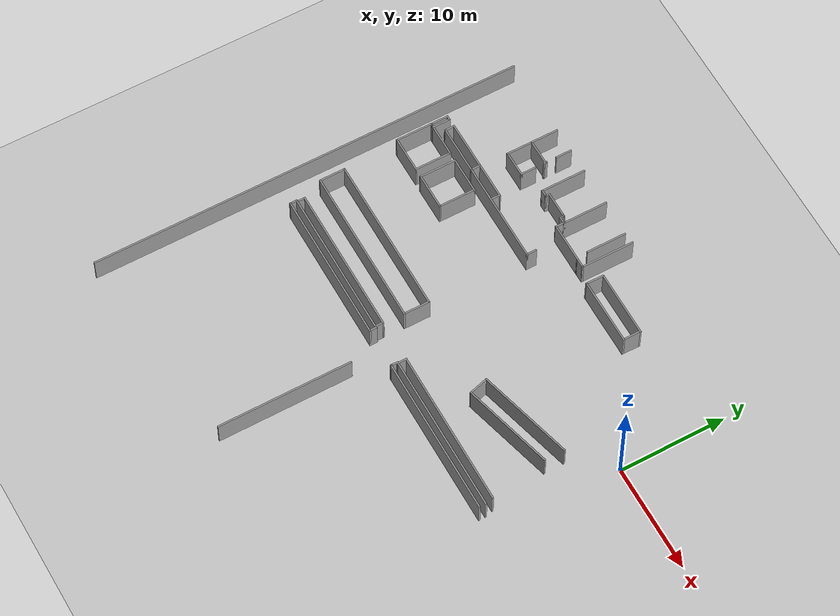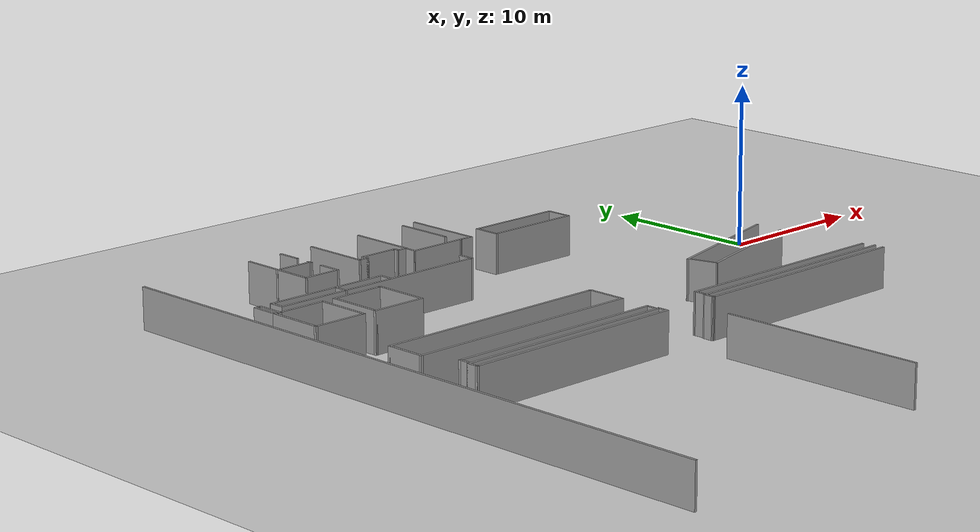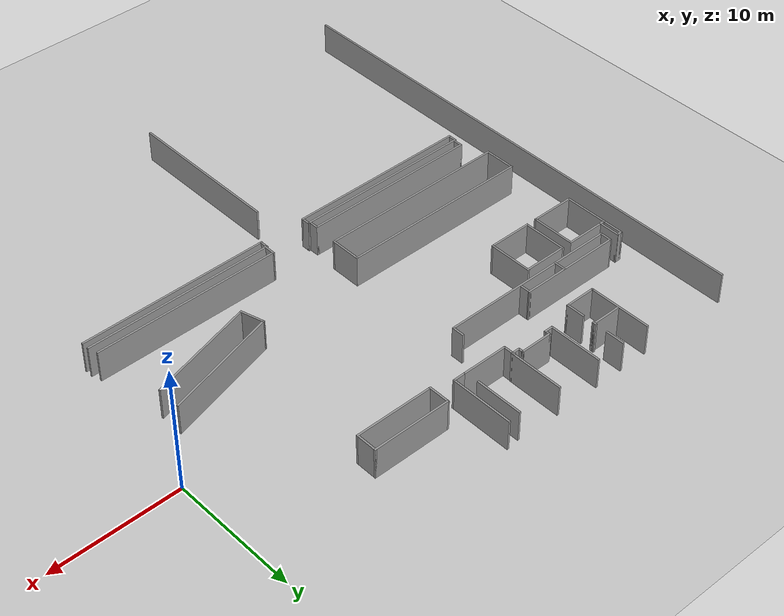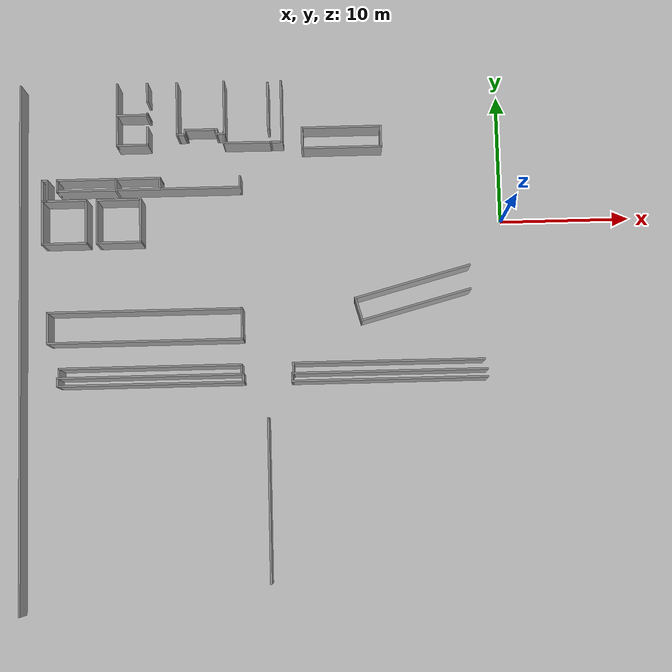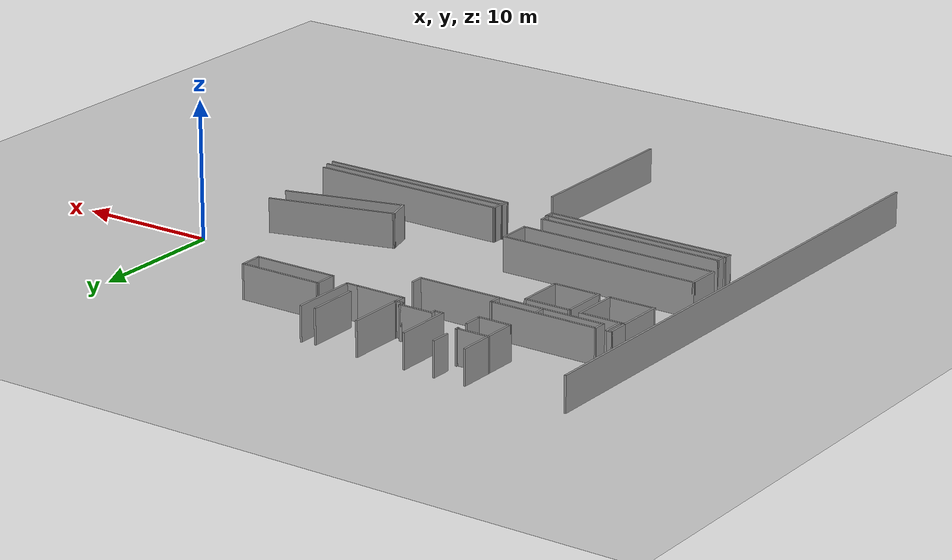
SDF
<sdf version="1.7">
 <world name="default">
  <model name="ground_plane">
   <static>1</static>
   <link name="link">
    <collision name="collision">
     <geometry><plane><normal>0 0 1</normal><size>100 100</size></plane></geometry>
     <surface>
      <contact><collide_bitmask>65535</collide_bitmask></contact>
      <friction><ode><mu>100</mu><mu2>50</mu2></ode></friction>
     </surface>
    </collision>
    <visual name="visual">
     <cast_shadows>0</cast_shadows>
     <geometry><plane><normal>0 0 1</normal><size>100 100</size></plane></geometry>
     <material>
      <script><uri>file://media/materials/scripts/gazebo.material</uri><name>Gazebo/Grey</name></script>
     </material>
    </visual>
   </link>
  </model>
  <model name="gix_2f">
   <pose>0.287504 -9.19255 0 0 -0 0</pose>
   <link name="Wall_11">
    <collision name="Wall_11_Collision">
     <geometry><box><size>15 0.15 2.5</size></box></geometry>
     <pose>0 0 1.25 0 -0 0</pose>
    </collision>
    <visual name="Wall_11_Visual">
     <pose>0 0 1.25 0 -0 0</pose>
     <geometry><box><size>15 0.15 2.5</size></box></geometry>
     <material>
      <script><uri>file://media/materials/scripts/gazebo.material</uri><name>Gazebo/Grey</name></script>
      <ambient>1 1 1 1</ambient>
     </material>
     <meta><layer>0</layer></meta>
    </visual>
    <pose>-9.43001 -2.59263 0 0 -0 0</pose>
   </link>
   <link name="Wall_13">
    <collision name="Wall_13_Collision">
     <geometry><box><size>15 0.15 2.5</size></box></geometry>
     <pose>0 0 1.25 0 -0 0</pose>
    </collision>
    <visual name="Wall_13_Visual">
     <pose>0 0 1.25 0 -0 0</pose>
     <geometry><box><size>15 0.15 2.5</size></box></geometry>
     <material>
      <script><uri>file://media/materials/scripts/gazebo.material</uri><name>Gazebo/Grey</name></script>
      <ambient>1 1 1 1</ambient>
     </material>
     <meta><layer>0</layer></meta>
    </visual>
    <pose>-9.43612 -3.18973 0 0 -0 3.14159</pose>
   </link>
   <link name="Wall_14">
    <collision name="Wall_14_Collision">
     <geometry><box><size>0.747125 0.15 2.5</size></box></geometry>
     <pose>0 0 1.25 0 -0 0</pose>
    </collision>
    <visual name="Wall_14_Visual">
     <pose>0 0 1.25 0 -0 0</pose>
     <geometry><box><size>0.747125 0.15 2.5</size></box></geometry>
     <material>
      <script><uri>file://media/materials/scripts/gazebo.material</uri><name>Gazebo/Grey</name></script>
      <ambient>1 1 1 1</ambient>
     </material>
     <meta><layer>0</layer></meta>
    </visual>
    <pose>-16.8581 -2.89118 0 0 -0 1.56056</pose>
   </link>
   <link name="Wall_16">
    <collision name="Wall_16_Collision">
     <geometry><box><size>40.75 0.15 2.5</size></box></geometry>
     <pose>0 0 1.25 0 -0 0</pose>
    </collision>
    <visual name="Wall_16_Visual">
     <pose>0 0 1.25 0 -0 0</pose>
     <geometry><box><size>40.75 0.15 2.5</size></box></geometry>
     <material>
      <script><uri>file://media/materials/scripts/gazebo.material</uri><name>Gazebo/Grey</name></script>
      <ambient>1 1 1 1</ambient>
     </material>
     <meta><layer>0</layer></meta>
    </visual>
    <pose>-37.55 0.010736 0 0 -0 1.5708</pose>
   </link>
   <link name="Wall_24">
    <collision name="Wall_24_Collision">
     <geometry><box><size>5 0.15 2.5</size></box></geometry>
     <pose>0 0 1.25 0 -0 0</pose>
    </collision>
    <visual name="Wall_24_Visual">
     <pose>0 0 1.25 0 -0 0</pose>
     <geometry><box><size>5 0.15 2.5</size></box></geometry>
     <material>
      <script><uri>file://media/materials/scripts/gazebo.material</uri><name>Gazebo/Grey</name></script>
      <ambient>1 1 1 1</ambient>
     </material>
     <meta><layer>0</layer></meta>
    </visual>
    <pose>-30.0544 17.8725 0 0 -0 -1.5708</pose>
   </link>
   <link name="Wall_25">
    <collision name="Wall_25_Collision">
     <geometry><box><size>2.5 0.15 2.5</size></box></geometry>
     <pose>0 0 1.25 0 -0 0</pose>
    </collision>
    <visual name="Wall_25_Visual">
     <pose>0 0 1.25 0 -0 0</pose>
     <geometry><box><size>2.5 0.15 2.5</size></box></geometry>
     <material>
      <script><uri>file://media/materials/scripts/gazebo.material</uri><name>Gazebo/Grey</name></script>
      <ambient>1 1 1 1</ambient>
     </material>
     <meta><layer>0</layer></meta>
    </visual>
    <pose>-28.8794 15.4475 0 0 -0 0</pose>
   </link>
   <link name="Wall_26">
    <collision name="Wall_26_Collision">
     <geometry><box><size>1.5 0.15 2.5</size></box></geometry>
     <pose>0 0 1.25 0 -0 0</pose>
    </collision>
    <visual name="Wall_26_Visual">
     <pose>0 0 1.25 0 -0 0</pose>
     <geometry><box><size>1.5 0.15 2.5</size></box></geometry>
     <material>
      <script><uri>file://media/materials/scripts/gazebo.material</uri><name>Gazebo/Grey</name></script>
      <ambient>1 1 1 1</ambient>
     </material>
     <meta><layer>0</layer></meta>
    </visual>
    <pose>-27.7044 16.1225 0 0 -0 1.5708</pose>
   </link>
   <link name="Wall_28">
    <collision name="Wall_28_Collision">
     <geometry><box><size>1.5 0.15 2.5</size></box></geometry>
     <pose>0 0 1.25 0 -0 0</pose>
    </collision>
    <visual name="Wall_28_Visual">
     <pose>0 0 1.25 0 -0 0</pose>
     <geometry><box><size>1.5 0.15 2.5</size></box></geometry>
     <material>
      <script><uri>file://media/materials/scripts/gazebo.material</uri><name>Gazebo/Grey</name></script>
      <ambient>1 1 1 1</ambient>
     </material>
     <meta><layer>0</layer></meta>
    </visual>
    <pose>-27.7086 19.6338 0 0 -0 -1.5708</pose>
   </link>
   <link name="Wall_30">
    <collision name="Wall_30_Collision">
     <geometry><box><size>2.5 0.15 2.5</size></box></geometry>
     <pose>0 0 1.25 0 -0 0</pose>
    </collision>
    <visual name="Wall_30_Visual">
     <pose>0 0 1.25 0 -0 0</pose>
     <geometry><box><size>2.5 0.15 2.5</size></box></geometry>
     <material>
      <script><uri>file://media/materials/scripts/gazebo.material</uri><name>Gazebo/Grey</name></script>
      <ambient>1 1 1 1</ambient>
     </material>
     <meta><layer>0</layer></meta>
    </visual>
    <pose>-28.8869 17.8238 0 0 -0 0</pose>
   </link>
   <link name="Wall_304">
    <collision name="Wall_304_Collision">
     <geometry><box><size>9.25 0.15 2.5</size></box></geometry>
     <pose>0 0 1.25 0 -0 0</pose>
    </collision>
    <visual name="Wall_304_Visual">
     <pose>0 0 1.25 0 -0 0</pose>
     <geometry><box><size>9.25 0.15 2.5</size></box></geometry>
     <material>
      <script><uri>file://media/materials/scripts/gazebo.material</uri><name>Gazebo/Grey</name></script>
      <ambient>1 1 1 1</ambient>
     </material>
     <meta><layer>0</layer></meta>
    </visual>
    <pose>-7.51464 4.24104 0 0 -0 0.261799</pose>
   </link>
   <link name="Wall_306">
    <collision name="Wall_306_Collision">
     <geometry><box><size>8.75 0.15 2.5</size></box></geometry>
     <pose>0 0 1.25 0 -0 0</pose>
    </collision>
    <visual name="Wall_306_Visual">
     <pose>0 0 1.25 0 -0 0</pose>
     <geometry><box><size>8.75 0.15 2.5</size></box></geometry>
     <material>
      <script><uri>file://media/materials/scripts/gazebo.material</uri><name>Gazebo/Grey</name></script>
      <ambient>1 1 1 1</ambient>
     </material>
     <meta><layer>0</layer></meta>
    </visual>
    <pose>-7.27316 2.45574 0 0 -0 -2.87979</pose>
   </link>
   <link name="Wall_307">
    <collision name="Wall_307_Collision">
     <geometry><box><size>1.93709 0.15 2.5</size></box></geometry>
     <pose>0 0 1.25 0 -0 0</pose>
    </collision>
    <visual name="Wall_307_Visual">
     <pose>0 0 1.25 0 -0 0</pose>
     <geometry><box><size>1.93709 0.15 2.5</size></box></geometry>
     <material>
      <script><uri>file://media/materials/scripts/gazebo.material</uri><name>Gazebo/Grey</name></script>
      <ambient>1 1 1 1</ambient>
     </material>
     <meta><layer>0</layer></meta>
    </visual>
    <pose>-11.6681 2.20312 0 0 -0 1.84445</pose>
   </link>
   <link name="Wall_309">
    <collision name="Wall_309_Collision">
     <geometry><box><size>12.5 0.15 2.5</size></box></geometry>
     <pose>0 0 1.25 0 -0 0</pose>
    </collision>
    <visual name="Wall_309_Visual">
     <pose>0 0 1.25 0 -0 0</pose>
     <geometry><box><size>12.5 0.15 2.5</size></box></geometry>
     <material>
      <script><uri>file://media/materials/scripts/gazebo.material</uri><name>Gazebo/Grey</name></script>
      <ambient>1 1 1 1</ambient>
     </material>
     <meta><layer>0</layer></meta>
    </visual>
    <pose>-18.7471 -12.1448 0 0 -0 -1.5708</pose>
   </link>
   <link name="Wall_32">
    <collision name="Wall_32_Collision">
     <geometry><box><size>0.25 0.15 2.5</size></box></geometry>
     <pose>0 0 1.25 0 -0 0</pose>
    </collision>
    <visual name="Wall_32_Visual">
     <pose>0 0 1.25 0 -0 0</pose>
     <geometry><box><size>0.25 0.15 2.5</size></box></geometry>
     <material>
      <script><uri>file://media/materials/scripts/gazebo.material</uri><name>Gazebo/Grey</name></script>
      <ambient>1 1 1 1</ambient>
     </material>
     <meta><layer>0</layer></meta>
    </visual>
    <pose>-27.7119 17.7738 0 0 -0 -1.5708</pose>
   </link>
   <link name="Wall_322">
    <collision name="Wall_322_Collision">
     <geometry><box><size>0.5 0.15 2.5</size></box></geometry>
     <pose>0 0 1.25 0 -0 0</pose>
    </collision>
    <visual name="Wall_322_Visual">
     <pose>0 0 1.25 0 -0 0</pose>
     <geometry><box><size>0.5 0.15 2.5</size></box></geometry>
     <material>
      <script><uri>file://media/materials/scripts/gazebo.material</uri><name>Gazebo/Grey</name></script>
      <ambient>1 1 1 1</ambient>
     </material>
     <meta><layer>0</layer></meta>
    </visual>
    <pose>-35.677 12.7687 0 0 -0 0</pose>
   </link>
   <link name="Wall_323">
    <collision name="Wall_323_Collision">
     <geometry><box><size>1.75 0.15 2.5</size></box></geometry>
     <pose>0 0 1.25 0 -0 0</pose>
    </collision>
    <visual name="Wall_323_Visual">
     <pose>0 0 1.25 0 -0 0</pose>
     <geometry><box><size>1.75 0.15 2.5</size></box></geometry>
     <material>
      <script><uri>file://media/materials/scripts/gazebo.material</uri><name>Gazebo/Grey</name></script>
      <ambient>1 1 1 1</ambient>
     </material>
     <meta><layer>0</layer></meta>
    </visual>
    <pose>-35.502 11.9687 0 0 -0 -1.5708</pose>
   </link>
   <link name="Wall_324">
    <collision name="Wall_324_Collision">
     <geometry><box><size>0.5 0.15 2.5</size></box></geometry>
     <pose>0 0 1.25 0 -0 0</pose>
    </collision>
    <visual name="Wall_324_Visual">
     <pose>0 0 1.25 0 -0 0</pose>
     <geometry><box><size>0.5 0.15 2.5</size></box></geometry>
     <material>
      <script><uri>file://media/materials/scripts/gazebo.material</uri><name>Gazebo/Grey</name></script>
      <ambient>1 1 1 1</ambient>
     </material>
     <meta><layer>0</layer></meta>
    </visual>
    <pose>-35.677 11.1687 0 0 -0 3.14159</pose>
   </link>
   <link name="Wall_325">
    <collision name="Wall_325_Collision">
     <geometry><box><size>1.75 0.15 2.5</size></box></geometry>
     <pose>0 0 1.25 0 -0 0</pose>
    </collision>
    <visual name="Wall_325_Visual">
     <pose>0 0 1.25 0 -0 0</pose>
     <geometry><box><size>1.75 0.15 2.5</size></box></geometry>
     <material>
      <script><uri>file://media/materials/scripts/gazebo.material</uri><name>Gazebo/Grey</name></script>
      <ambient>1 1 1 1</ambient>
     </material>
     <meta><layer>0</layer></meta>
    </visual>
    <pose>-35.852 11.9687 0 0 -0 1.5708</pose>
   </link>
   <link name="Wall_327">
    <collision name="Wall_327_Collision">
     <geometry><box><size>3.5 0.15 2.5</size></box></geometry>
     <pose>0 0 1.25 0 -0 0</pose>
    </collision>
    <visual name="Wall_327_Visual">
     <pose>0 0 1.25 0 -0 0</pose>
     <geometry><box><size>3.5 0.15 2.5</size></box></geometry>
     <material>
      <script><uri>file://media/materials/scripts/gazebo.material</uri><name>Gazebo/Grey</name></script>
      <ambient>1 1 1 1</ambient>
     </material>
     <meta><layer>0</layer></meta>
    </visual>
    <pose>-34.177 11.1687 0 0 -0 0</pose>
   </link>
   <link name="Wall_328">
    <collision name="Wall_328_Collision">
     <geometry><box><size>3.5 0.15 2.5</size></box></geometry>
     <pose>0 0 1.25 0 -0 0</pose>
    </collision>
    <visual name="Wall_328_Visual">
     <pose>0 0 1.25 0 -0 0</pose>
     <geometry><box><size>3.5 0.15 2.5</size></box></geometry>
     <material>
      <script><uri>file://media/materials/scripts/gazebo.material</uri><name>Gazebo/Grey</name></script>
      <ambient>1 1 1 1</ambient>
     </material>
     <meta><layer>0</layer></meta>
    </visual>
    <pose>-32.502 9.49365 0 0 -0 -1.5708</pose>
   </link>
   <link name="Wall_330">
    <collision name="Wall_330_Collision">
     <geometry><box><size>3.5 0.15 2.5</size></box></geometry>
     <pose>0 0 1.25 0 -0 0</pose>
    </collision>
    <visual name="Wall_330_Visual">
     <pose>0 0 1.25 0 -0 0</pose>
     <geometry><box><size>3.5 0.15 2.5</size></box></geometry>
     <material>
      <script><uri>file://media/materials/scripts/gazebo.material</uri><name>Gazebo/Grey</name></script>
      <ambient>1 1 1 1</ambient>
     </material>
     <meta><layer>0</layer></meta>
    </visual>
    <pose>-34.177 7.81865 0 0 -0 3.14159</pose>
   </link>
   <link name="Wall_331">
    <collision name="Wall_331_Collision">
     <geometry><box><size>3.5 0.15 2.5</size></box></geometry>
     <pose>0 0 1.25 0 -0 0</pose>
    </collision>
    <visual name="Wall_331_Visual">
     <pose>0 0 1.25 0 -0 0</pose>
     <geometry><box><size>3.5 0.15 2.5</size></box></geometry>
     <material>
      <script><uri>file://media/materials/scripts/gazebo.material</uri><name>Gazebo/Grey</name></script>
      <ambient>1 1 1 1</ambient>
     </material>
     <meta><layer>0</layer></meta>
    </visual>
    <pose>-35.852 9.49365 0 0 -0 1.5708</pose>
   </link>
   <link name="Wall_333">
    <collision name="Wall_333_Collision">
     <geometry><box><size>3.5 0.15 2.5</size></box></geometry>
     <pose>0 0 1.25 0 -0 0</pose>
    </collision>
    <visual name="Wall_333_Visual">
     <pose>0 0 1.25 0 -0 0</pose>
     <geometry><box><size>3.5 0.15 2.5</size></box></geometry>
     <material>
      <script><uri>file://media/materials/scripts/gazebo.material</uri><name>Gazebo/Grey</name></script>
      <ambient>1 1 1 1</ambient>
     </material>
     <meta><layer>0</layer></meta>
    </visual>
    <pose>-29.9831 11.1663 0 0 -0 0</pose>
   </link>
   <link name="Wall_334">
    <collision name="Wall_334_Collision">
     <geometry><box><size>3.5 0.15 2.5</size></box></geometry>
     <pose>0 0 1.25 0 -0 0</pose>
    </collision>
    <visual name="Wall_334_Visual">
     <pose>0 0 1.25 0 -0 0</pose>
     <geometry><box><size>3.5 0.15 2.5</size></box></geometry>
     <material>
      <script><uri>file://media/materials/scripts/gazebo.material</uri><name>Gazebo/Grey</name></script>
      <ambient>1 1 1 1</ambient>
     </material>
     <meta><layer>0</layer></meta>
    </visual>
    <pose>-28.3081 9.49133 0 0 -0 -1.5708</pose>
   </link>
   <link name="Wall_335">
    <collision name="Wall_335_Collision">
     <geometry><box><size>3.5 0.15 2.5</size></box></geometry>
     <pose>0 0 1.25 0 -0 0</pose>
    </collision>
    <visual name="Wall_335_Visual">
     <pose>0 0 1.25 0 -0 0</pose>
     <geometry><box><size>3.5 0.15 2.5</size></box></geometry>
     <material>
      <script><uri>file://media/materials/scripts/gazebo.material</uri><name>Gazebo/Grey</name></script>
      <ambient>1 1 1 1</ambient>
     </material>
     <meta><layer>0</layer></meta>
    </visual>
    <pose>-29.9831 7.81633 0 0 -0 3.14159</pose>
   </link>
   <link name="Wall_336">
    <collision name="Wall_336_Collision">
     <geometry><box><size>3.5 0.15 2.5</size></box></geometry>
     <pose>0 0 1.25 0 -0 0</pose>
    </collision>
    <visual name="Wall_336_Visual">
     <pose>0 0 1.25 0 -0 0</pose>
     <geometry><box><size>3.5 0.15 2.5</size></box></geometry>
     <material>
      <script><uri>file://media/materials/scripts/gazebo.material</uri><name>Gazebo/Grey</name></script>
      <ambient>1 1 1 1</ambient>
     </material>
     <meta><layer>0</layer></meta>
    </visual>
    <pose>-31.6581 9.49133 0 0 -0 1.5708</pose>
   </link>
   <link name="Wall_344">
    <collision name="Wall_344_Collision">
     <geometry><box><size>14 0.15 2.5</size></box></geometry>
     <pose>0 0 1.25 0 -0 0</pose>
    </collision>
    <visual name="Wall_344_Visual">
     <pose>0 0 1.25 0 -0 0</pose>
     <geometry><box><size>14 0.15 2.5</size></box></geometry>
     <material>
      <script><uri>file://media/materials/scripts/gazebo.material</uri><name>Gazebo/Grey</name></script>
      <ambient>1 1 1 1</ambient>
     </material>
     <meta><layer>0</layer></meta>
    </visual>
    <pose>-27.6553 -1.84593 0 0 -0 0</pose>
   </link>
   <link name="Wall_346">
    <collision name="Wall_346_Collision">
     <geometry><box><size>0.75 0.15 2.5</size></box></geometry>
     <pose>0 0 1.25 0 -0 0</pose>
    </collision>
    <visual name="Wall_346_Visual">
     <pose>0 0 1.25 0 -0 0</pose>
     <geometry><box><size>0.75 0.15 2.5</size></box></geometry>
     <material>
      <script><uri>file://media/materials/scripts/gazebo.material</uri><name>Gazebo/Grey</name></script>
      <ambient>1 1 1 1</ambient>
     </material>
     <meta><layer>0</layer></meta>
    </visual>
    <pose>-20.7303 -2.14593 0 0 -0 -1.5708</pose>
   </link>
   <link name="Wall_348">
    <collision name="Wall_348_Collision">
     <geometry><box><size>0.75 0.15 2.5</size></box></geometry>
     <pose>0 0 1.25 0 -0 0</pose>
    </collision>
    <visual name="Wall_348_Visual">
     <pose>0 0 1.25 0 -0 0</pose>
     <geometry><box><size>0.75 0.15 2.5</size></box></geometry>
     <material>
      <script><uri>file://media/materials/scripts/gazebo.material</uri><name>Gazebo/Grey</name></script>
      <ambient>1 1 1 1</ambient>
     </material>
     <meta><layer>0</layer></meta>
    </visual>
    <pose>-34.5803 -2.14593 0 0 -0 -1.5708</pose>
   </link>
   <link name="Wall_35">
    <collision name="Wall_35_Collision">
     <geometry><box><size>0.25 0.15 2.5</size></box></geometry>
     <pose>0 0 1.25 0 -0 0</pose>
    </collision>
    <visual name="Wall_35_Visual">
     <pose>0 0 1.25 0 -0 0</pose>
     <geometry><box><size>0.25 0.15 2.5</size></box></geometry>
     <material>
      <script><uri>file://media/materials/scripts/gazebo.material</uri><name>Gazebo/Grey</name></script>
      <ambient>1 1 1 1</ambient>
     </material>
     <meta><layer>0</layer></meta>
    </visual>
    <pose>-27.7119 17.8738 0 0 -0 1.5708</pose>
   </link>
   <link name="Wall_350">
    <collision name="Wall_350_Collision">
     <geometry><box><size>14.7049 0.15 2.5</size></box></geometry>
     <pose>0 0 1.25 0 -0 0</pose>
    </collision>
    <visual name="Wall_350_Visual">
     <pose>0 0 1.25 0 -0 0</pose>
     <geometry><box><size>14.7049 0.15 2.5</size></box></geometry>
     <material>
      <script><uri>file://media/materials/scripts/gazebo.material</uri><name>Gazebo/Grey</name></script>
      <ambient>1 1 1 1</ambient>
     </material>
     <meta><layer>0</layer></meta>
    </visual>
    <pose>-9.49553 -1.82684 0 0 -0 -0.002095</pose>
   </link>
   <link name="Wall_353">
    <collision name="Wall_353_Collision">
     <geometry><box><size>1 0.15 2.5</size></box></geometry>
     <pose>0 0 1.25 0 -0 0</pose>
    </collision>
    <visual name="Wall_353_Visual">
     <pose>0 0 1.25 0 -0 0</pose>
     <geometry><box><size>1 0.15 2.5</size></box></geometry>
     <material>
      <script><uri>file://media/materials/scripts/gazebo.material</uri><name>Gazebo/Grey</name></script>
      <ambient>1 1 1 1</ambient>
     </material>
     <meta><layer>0</layer></meta>
    </visual>
    <pose>-16.773 -2.23659 0 0 -0 -1.5708</pose>
   </link>
   <link name="Wall_358">
    <collision name="Wall_358_Collision">
     <geometry><box><size>2.5 0.15 2.5</size></box></geometry>
     <pose>0 0 1.25 0 -0 0</pose>
    </collision>
    <visual name="Wall_358_Visual">
     <pose>0 0 1.25 0 -0 0</pose>
     <geometry><box><size>2.5 0.15 2.5</size></box></geometry>
     <material>
      <script><uri>file://media/materials/scripts/gazebo.material</uri><name>Gazebo/Grey</name></script>
      <ambient>1 1 1 1</ambient>
     </material>
     <meta><layer>0</layer></meta>
    </visual>
    <pose>-35.4673 1.29847 0 0 -0 1.5708</pose>
   </link>
   <link name="Wall_359">
    <collision name="Wall_359_Collision">
     <geometry><box><size>15 0.15 2.5</size></box></geometry>
     <pose>0 0 1.25 0 -0 0</pose>
    </collision>
    <visual name="Wall_359_Visual">
     <pose>0 0 1.25 0 -0 0</pose>
     <geometry><box><size>15 0.15 2.5</size></box></geometry>
     <material>
      <script><uri>file://media/materials/scripts/gazebo.material</uri><name>Gazebo/Grey</name></script>
      <ambient>1 1 1 1</ambient>
     </material>
     <meta><layer>0</layer></meta>
    </visual>
    <pose>-28.0423 2.47348 0 0 -0 0</pose>
   </link>
   <link name="Wall_360">
    <collision name="Wall_360_Collision">
     <geometry><box><size>2.5 0.15 2.5</size></box></geometry>
     <pose>0 0 1.25 0 -0 0</pose>
    </collision>
    <visual name="Wall_360_Visual">
     <pose>0 0 1.25 0 -0 0</pose>
     <geometry><box><size>2.5 0.15 2.5</size></box></geometry>
     <material>
      <script><uri>file://media/materials/scripts/gazebo.material</uri><name>Gazebo/Grey</name></script>
      <ambient>1 1 1 1</ambient>
     </material>
     <meta><layer>0</layer></meta>
    </visual>
    <pose>-20.6173 1.29847 0 0 -0 -1.5708</pose>
   </link>
   <link name="Wall_361">
    <collision name="Wall_361_Collision">
     <geometry><box><size>15 0.15 2.5</size></box></geometry>
     <pose>0 0 1.25 0 -0 0</pose>
    </collision>
    <visual name="Wall_361_Visual">
     <pose>0 0 1.25 0 -0 0</pose>
     <geometry><box><size>15 0.15 2.5</size></box></geometry>
     <material>
      <script><uri>file://media/materials/scripts/gazebo.material</uri><name>Gazebo/Grey</name></script>
      <ambient>1 1 1 1</ambient>
     </material>
     <meta><layer>0</layer></meta>
    </visual>
    <pose>-28.0423 0.123474 0 0 -0 3.14159</pose>
   </link>
   <link name="Wall_37">
    <collision name="Wall_37_Collision">
     <geometry><box><size>4.25 0.15 2.5</size></box></geometry>
     <pose>0 0 1.25 0 -0 0</pose>
    </collision>
    <visual name="Wall_37_Visual">
     <pose>0 0 1.25 0 -0 0</pose>
     <geometry><box><size>4.25 0.15 2.5</size></box></geometry>
     <material>
      <script><uri>file://media/materials/scripts/gazebo.material</uri><name>Gazebo/Grey</name></script>
      <ambient>1 1 1 1</ambient>
     </material>
     <meta><layer>0</layer></meta>
    </visual>
    <pose>-25.4038 18.2444 0 0 -0 -1.5708</pose>
   </link>
   <link name="Wall_38">
    <collision name="Wall_38_Collision">
     <geometry><box><size>0.75 0.15 2.5</size></box></geometry>
     <pose>0 0 1.25 0 -0 0</pose>
    </collision>
    <visual name="Wall_38_Visual">
     <pose>0 0 1.25 0 -0 0</pose>
     <geometry><box><size>0.75 0.15 2.5</size></box></geometry>
     <material>
      <script><uri>file://media/materials/scripts/gazebo.material</uri><name>Gazebo/Grey</name></script>
      <ambient>1 1 1 1</ambient>
     </material>
     <meta><layer>0</layer></meta>
    </visual>
    <pose>-25.1038 16.1944 0 0 -0 0</pose>
   </link>
   <link name="Wall_39">
    <collision name="Wall_39_Collision">
     <geometry><box><size>0.5 0.15 2.5</size></box></geometry>
     <pose>0 0 1.25 0 -0 0</pose>
    </collision>
    <visual name="Wall_39_Visual">
     <pose>0 0 1.25 0 -0 0</pose>
     <geometry><box><size>0.5 0.15 2.5</size></box></geometry>
     <material>
      <script><uri>file://media/materials/scripts/gazebo.material</uri><name>Gazebo/Grey</name></script>
      <ambient>1 1 1 1</ambient>
     </material>
     <meta><layer>0</layer></meta>
    </visual>
    <pose>-24.8038 16.3694 0 0 -0 1.5708</pose>
   </link>
   <link name="Wall_4">
    <collision name="Wall_4_Collision">
     <geometry><box><size>14.25 0.15 2.5</size></box></geometry>
     <pose>0 0 1.25 0 -0 0</pose>
    </collision>
    <visual name="Wall_4_Visual">
     <pose>0 0 1.25 0 -0 0</pose>
     <geometry><box><size>14.25 0.15 2.5</size></box></geometry>
     <material>
      <script><uri>file://media/materials/scripts/gazebo.material</uri><name>Gazebo/Grey</name></script>
      <ambient>1 1 1 1</ambient>
     </material>
     <meta><layer>0</layer></meta>
    </visual>
    <pose>-27.6418 -2.56513 0 0 -0 0</pose>
   </link>
   <link name="Wall_40">
    <collision name="Wall_40_Collision">
     <geometry><box><size>2.5 0.15 2.5</size></box></geometry>
     <pose>0 0 1.25 0 -0 0</pose>
    </collision>
    <visual name="Wall_40_Visual">
     <pose>0 0 1.25 0 -0 0</pose>
     <geometry><box><size>2.5 0.15 2.5</size></box></geometry>
     <material>
      <script><uri>file://media/materials/scripts/gazebo.material</uri><name>Gazebo/Grey</name></script>
      <ambient>1 1 1 1</ambient>
     </material>
     <meta><layer>0</layer></meta>
    </visual>
    <pose>-23.6288 16.5444 0 0 -0 0</pose>
   </link>
   <link name="Wall_41">
    <collision name="Wall_41_Collision">
     <geometry><box><size>0.25 0.15 2.5</size></box></geometry>
     <pose>0 0 1.25 0 -0 0</pose>
    </collision>
    <visual name="Wall_41_Visual">
     <pose>0 0 1.25 0 -0 0</pose>
     <geometry><box><size>0.25 0.15 2.5</size></box></geometry>
     <material>
      <script><uri>file://media/materials/scripts/gazebo.material</uri><name>Gazebo/Grey</name></script>
      <ambient>1 1 1 1</ambient>
     </material>
     <meta><layer>0</layer></meta>
    </visual>
    <pose>-22.4038 16.5444 0 0 -0 0</pose>
   </link>
   <link name="Wall_42">
    <collision name="Wall_42_Collision">
     <geometry><box><size>0.5 0.15 2.5</size></box></geometry>
     <pose>0 0 1.25 0 -0 0</pose>
    </collision>
    <visual name="Wall_42_Visual">
     <pose>0 0 1.25 0 -0 0</pose>
     <geometry><box><size>0.5 0.15 2.5</size></box></geometry>
     <material>
      <script><uri>file://media/materials/scripts/gazebo.material</uri><name>Gazebo/Grey</name></script>
      <ambient>1 1 1 1</ambient>
     </material>
     <meta><layer>0</layer></meta>
    </visual>
    <pose>-22.3538 16.3694 0 0 -0 -1.5708</pose>
   </link>
   <link name="Wall_43">
    <collision name="Wall_43_Collision">
     <geometry><box><size>0.75 0.15 2.5</size></box></geometry>
     <pose>0 0 1.25 0 -0 0</pose>
    </collision>
    <visual name="Wall_43_Visual">
     <pose>0 0 1.25 0 -0 0</pose>
     <geometry><box><size>0.75 0.15 2.5</size></box></geometry>
     <material>
      <script><uri>file://media/materials/scripts/gazebo.material</uri><name>Gazebo/Grey</name></script>
      <ambient>1 1 1 1</ambient>
     </material>
     <meta><layer>0</layer></meta>
    </visual>
    <pose>-22.0538 16.1944 0 0 -0 0</pose>
   </link>
   <link name="Wall_45">
    <collision name="Wall_45_Collision">
     <geometry><box><size>4.28392 0.15 2.5</size></box></geometry>
     <pose>0 0 1.25 0 -0 0</pose>
    </collision>
    <visual name="Wall_45_Visual">
     <pose>0 0 1.25 0 -0 0</pose>
     <geometry><box><size>4.28392 0.15 2.5</size></box></geometry>
     <material>
      <script><uri>file://media/materials/scripts/gazebo.material</uri><name>Gazebo/Grey</name></script>
      <ambient>1 1 1 1</ambient>
     </material>
     <meta><layer>0</layer></meta>
    </visual>
    <pose>-21.7556 18.2614 0 0 -0 -1.5699</pose>
   </link>
   <link name="Wall_49">
    <collision name="Wall_49_Collision">
     <geometry><box><size>1 0.15 2.5</size></box></geometry>
     <pose>0 0 1.25 0 -0 0</pose>
    </collision>
    <visual name="Wall_49_Visual">
     <pose>0 0 1.25 0 -0 0</pose>
     <geometry><box><size>1 0.15 2.5</size></box></geometry>
     <material>
      <script><uri>file://media/materials/scripts/gazebo.material</uri><name>Gazebo/Grey</name></script>
      <ambient>1 1 1 1</ambient>
     </material>
     <meta><layer>0</layer></meta>
    </visual>
    <pose>-21.7845 15.8751 0 0 -0 1.5708</pose>
   </link>
   <link name="Wall_5">
    <collision name="Wall_5_Collision">
     <geometry><box><size>0.75 0.15 2.5</size></box></geometry>
     <pose>0 0 1.25 0 -0 0</pose>
    </collision>
    <visual name="Wall_5_Visual">
     <pose>0 0 1.25 0 -0 0</pose>
     <geometry><box><size>0.75 0.15 2.5</size></box></geometry>
     <material>
      <script><uri>file://media/materials/scripts/gazebo.material</uri><name>Gazebo/Grey</name></script>
      <ambient>1 1 1 1</ambient>
     </material>
     <meta><layer>0</layer></meta>
    </visual>
    <pose>-20.5918 -2.86513 0 0 -0 -1.5708</pose>
   </link>
   <link name="Wall_51">
    <collision name="Wall_51_Collision">
     <geometry><box><size>3.78139 0.15 2.5</size></box></geometry>
     <pose>0 0 1.25 0 -0 0</pose>
    </collision>
    <visual name="Wall_51_Visual">
     <pose>0 0 1.25 0 -0 0</pose>
     <geometry><box><size>3.78139 0.15 2.5</size></box></geometry>
     <material>
      <script><uri>file://media/materials/scripts/gazebo.material</uri><name>Gazebo/Grey</name></script>
      <ambient>1 1 1 1</ambient>
     </material>
     <meta><layer>0</layer></meta>
    </visual>
    <pose>-19.9688 15.4429 0 0 -0 3.13767</pose>
   </link>
   <link name="Wall_55">
    <collision name="Wall_55_Collision">
     <geometry><box><size>3.75 0.15 2.5</size></box></geometry>
     <pose>0 0 1.25 0 -0 0</pose>
    </collision>
    <visual name="Wall_55_Visual">
     <pose>0 0 1.25 0 -0 0</pose>
     <geometry><box><size>3.75 0.15 2.5</size></box></geometry>
     <material>
      <script><uri>file://media/materials/scripts/gazebo.material</uri><name>Gazebo/Grey</name></script>
      <ambient>1 1 1 1</ambient>
     </material>
     <meta><layer>0</layer></meta>
    </visual>
    <pose>-18.3454 18.3603 0 0 -0 1.5708</pose>
   </link>
   <link name="Wall_57">
    <collision name="Wall_57_Collision">
     <geometry><box><size>5 0.15 2.5</size></box></geometry>
     <pose>0 0 1.25 0 -0 0</pose>
    </collision>
    <visual name="Wall_57_Visual">
     <pose>0 0 1.25 0 -0 0</pose>
     <geometry><box><size>5 0.15 2.5</size></box></geometry>
     <material>
      <script><uri>file://media/materials/scripts/gazebo.material</uri><name>Gazebo/Grey</name></script>
      <ambient>1 1 1 1</ambient>
     </material>
     <meta><layer>0</layer></meta>
    </visual>
    <pose>-17.3031 17.8608 0 0 -0 -1.5708</pose>
   </link>
   <link name="Wall_58">
    <collision name="Wall_58_Collision">
     <geometry><box><size>1 0.15 2.5</size></box></geometry>
     <pose>0 0 1.25 0 -0 0</pose>
    </collision>
    <visual name="Wall_58_Visual">
     <pose>0 0 1.25 0 -0 0</pose>
     <geometry><box><size>1 0.15 2.5</size></box></geometry>
     <material>
      <script><uri>file://media/materials/scripts/gazebo.material</uri><name>Gazebo/Grey</name></script>
      <ambient>1 1 1 1</ambient>
     </material>
     <meta><layer>0</layer></meta>
    </visual>
    <pose>-17.7281 15.4358 0 0 -0 3.14159</pose>
   </link>
   <link name="Wall_6">
    <collision name="Wall_6_Collision">
     <geometry><box><size>14.25 0.15 2.5</size></box></geometry>
     <pose>0 0 1.25 0 -0 0</pose>
    </collision>
    <visual name="Wall_6_Visual">
     <pose>0 0 1.25 0 -0 0</pose>
     <geometry><box><size>14.25 0.15 2.5</size></box></geometry>
     <material>
      <script><uri>file://media/materials/scripts/gazebo.material</uri><name>Gazebo/Grey</name></script>
      <ambient>1 1 1 1</ambient>
     </material>
     <meta><layer>0</layer></meta>
    </visual>
    <pose>-27.6418 -3.16513 0 0 -0 3.14159</pose>
   </link>
   <link name="Wall_61">
    <collision name="Wall_61_Collision">
     <geometry><box><size>1 0.15 2.5</size></box></geometry>
     <pose>0 0 1.25 0 -0 0</pose>
    </collision>
    <visual name="Wall_61_Visual">
     <pose>0 0 1.25 0 -0 0</pose>
     <geometry><box><size>1 0.15 2.5</size></box></geometry>
     <material>
      <script><uri>file://media/materials/scripts/gazebo.material</uri><name>Gazebo/Grey</name></script>
      <ambient>1 1 1 1</ambient>
     </material>
     <meta><layer>0</layer></meta>
    </visual>
    <pose>-34.7146 12.362 0 0 -0 -1.5708</pose>
   </link>
   <link name="Wall_62">
    <collision name="Wall_62_Collision">
     <geometry><box><size>14.25 0.15 2.5</size></box></geometry>
     <pose>0 0 1.25 0 -0 0</pose>
    </collision>
    <visual name="Wall_62_Visual">
     <pose>0 0 1.25 0 -0 0</pose>
     <geometry><box><size>14.25 0.15 2.5</size></box></geometry>
     <material>
      <script><uri>file://media/materials/scripts/gazebo.material</uri><name>Gazebo/Grey</name></script>
      <ambient>1 1 1 1</ambient>
     </material>
     <meta><layer>0</layer></meta>
    </visual>
    <pose>-27.6646 11.937 0 0 -0 0</pose>
   </link>
   <link name="Wall_63">
    <collision name="Wall_63_Collision">
     <geometry><box><size>1 0.15 2.5</size></box></geometry>
     <pose>0 0 1.25 0 -0 0</pose>
    </collision>
    <visual name="Wall_63_Visual">
     <pose>0 0 1.25 0 -0 0</pose>
     <geometry><box><size>1 0.15 2.5</size></box></geometry>
     <material>
      <script><uri>file://media/materials/scripts/gazebo.material</uri><name>Gazebo/Grey</name></script>
      <ambient>1 1 1 1</ambient>
     </material>
     <meta><layer>0</layer></meta>
    </visual>
    <pose>-20.6146 12.362 0 0 -0 1.5708</pose>
   </link>
   <link name="Wall_65">
    <collision name="Wall_65_Collision">
     <geometry><box><size>1 0.15 2.5</size></box></geometry>
     <pose>0 0 1.25 0 -0 0</pose>
    </collision>
    <visual name="Wall_65_Visual">
     <pose>0 0 1.25 0 -0 0</pose>
     <geometry><box><size>1 0.15 2.5</size></box></geometry>
     <material>
      <script><uri>file://media/materials/scripts/gazebo.material</uri><name>Gazebo/Grey</name></script>
      <ambient>1 1 1 1</ambient>
     </material>
     <meta><layer>0</layer></meta>
    </visual>
    <pose>-30.1655 12.3513 0 0 -0 1.5708</pose>
   </link>
   <link name="Wall_68">
    <collision name="Wall_68_Collision">
     <geometry><box><size>1 0.15 2.5</size></box></geometry>
     <pose>0 0 1.25 0 -0 0</pose>
    </collision>
    <visual name="Wall_68_Visual">
     <pose>0 0 1.25 0 -0 0</pose>
     <geometry><box><size>1 0.15 2.5</size></box></geometry>
     <material>
      <script><uri>file://media/materials/scripts/gazebo.material</uri><name>Gazebo/Grey</name></script>
      <ambient>1 1 1 1</ambient>
     </material>
     <meta><layer>0</layer></meta>
    </visual>
    <pose>-26.7928 12.3672 0 0 -0 1.5708</pose>
   </link>
   <link name="Wall_69">
    <collision name="Wall_69_Collision">
     <geometry><box><size>8.07179 0.15 2.5</size></box></geometry>
     <pose>0 0 1.25 0 -0 0</pose>
    </collision>
    <visual name="Wall_69_Visual">
     <pose>0 0 1.25 0 -0 0</pose>
     <geometry><box><size>8.07179 0.15 2.5</size></box></geometry>
     <material>
      <script><uri>file://media/materials/scripts/gazebo.material</uri><name>Gazebo/Grey</name></script>
      <ambient>1 1 1 1</ambient>
     </material>
     <meta><layer>0</layer></meta>
    </visual>
    <pose>-30.7537 12.7896 0 0 -0 -3.14093</pose>
   </link>
   <link name="Wall_7">
    <collision name="Wall_7_Collision">
     <geometry><box><size>0.75 0.15 2.5</size></box></geometry>
     <pose>0 0 1.25 0 -0 0</pose>
    </collision>
    <visual name="Wall_7_Visual">
     <pose>0 0 1.25 0 -0 0</pose>
     <geometry><box><size>0.75 0.15 2.5</size></box></geometry>
     <material>
      <script><uri>file://media/materials/scripts/gazebo.material</uri><name>Gazebo/Grey</name></script>
      <ambient>1 1 1 1</ambient>
     </material>
     <meta><layer>0</layer></meta>
    </visual>
    <pose>-34.6918 -2.86513 0 0 -0 1.5708</pose>
   </link>
   <link name="Wall_71">
    <collision name="Wall_71_Collision">
     <geometry><box><size>6.25 0.15 2.5</size></box></geometry>
     <pose>0 0 1.25 0 -0 0</pose>
    </collision>
    <visual name="Wall_71_Visual">
     <pose>0 0 1.25 0 -0 0</pose>
     <geometry><box><size>6.25 0.15 2.5</size></box></geometry>
     <material>
      <script><uri>file://media/materials/scripts/gazebo.material</uri><name>Gazebo/Grey</name></script>
      <ambient>1 1 1 1</ambient>
     </material>
     <meta><layer>0</layer></meta>
    </visual>
    <pose>-12.6755 16.5062 0 0 -0 0</pose>
   </link>
   <link name="Wall_72">
    <collision name="Wall_72_Collision">
     <geometry><box><size>1.75 0.15 2.5</size></box></geometry>
     <pose>0 0 1.25 0 -0 0</pose>
    </collision>
    <visual name="Wall_72_Visual">
     <pose>0 0 1.25 0 -0 0</pose>
     <geometry><box><size>1.75 0.15 2.5</size></box></geometry>
     <material>
      <script><uri>file://media/materials/scripts/gazebo.material</uri><name>Gazebo/Grey</name></script>
      <ambient>1 1 1 1</ambient>
     </material>
     <meta><layer>0</layer></meta>
    </visual>
    <pose>-9.62555 15.7062 0 0 -0 -1.5708</pose>
   </link>
   <link name="Wall_73">
    <collision name="Wall_73_Collision">
     <geometry><box><size>6.25 0.15 2.5</size></box></geometry>
     <pose>0 0 1.25 0 -0 0</pose>
    </collision>
    <visual name="Wall_73_Visual">
     <pose>0 0 1.25 0 -0 0</pose>
     <geometry><box><size>6.25 0.15 2.5</size></box></geometry>
     <material>
      <script><uri>file://media/materials/scripts/gazebo.material</uri><name>Gazebo/Grey</name></script>
      <ambient>1 1 1 1</ambient>
     </material>
     <meta><layer>0</layer></meta>
    </visual>
    <pose>-12.6755 14.9062 0 0 -0 3.14159</pose>
   </link>
   <link name="Wall_74">
    <collision name="Wall_74_Collision">
     <geometry><box><size>1.75 0.15 2.5</size></box></geometry>
     <pose>0 0 1.25 0 -0 0</pose>
    </collision>
    <visual name="Wall_74_Visual">
     <pose>0 0 1.25 0 -0 0</pose>
     <geometry><box><size>1.75 0.15 2.5</size></box></geometry>
     <material>
      <script><uri>file://media/materials/scripts/gazebo.material</uri><name>Gazebo/Grey</name></script>
      <ambient>1 1 1 1</ambient>
     </material>
     <meta><layer>0</layer></meta>
    </visual>
    <pose>-15.7255 15.7062 0 0 -0 1.5708</pose>
   </link>
   <static>1</static>
  </model>
 </world>
</sdf>
